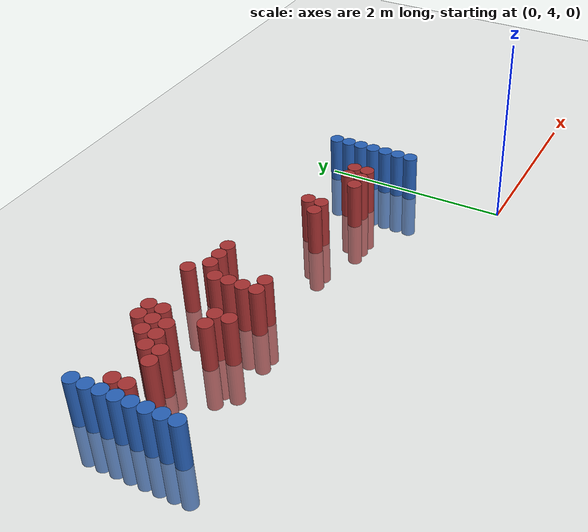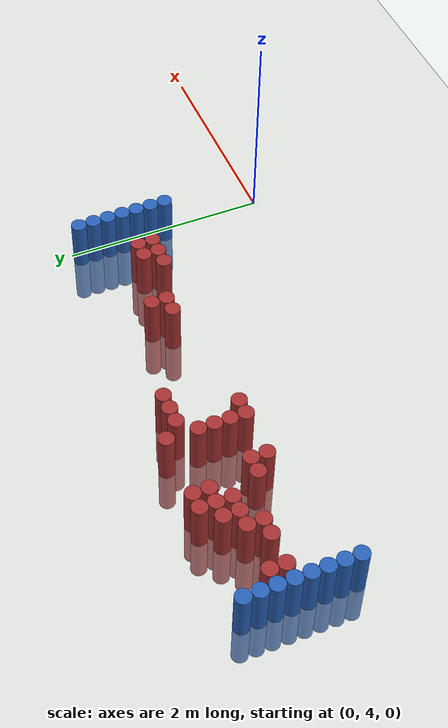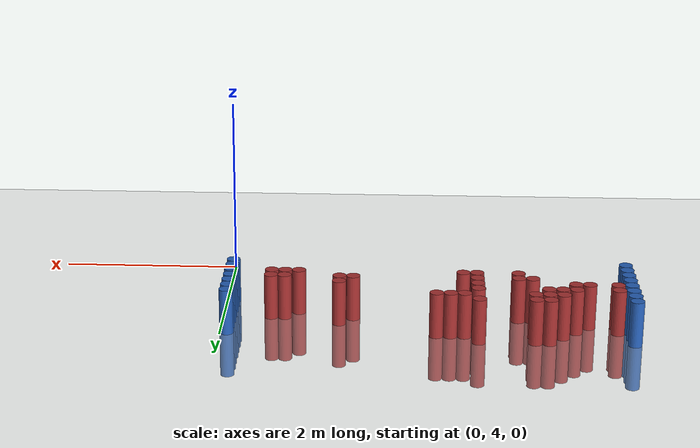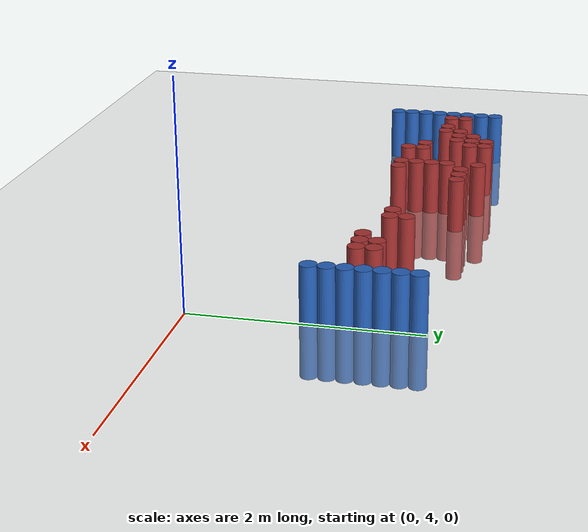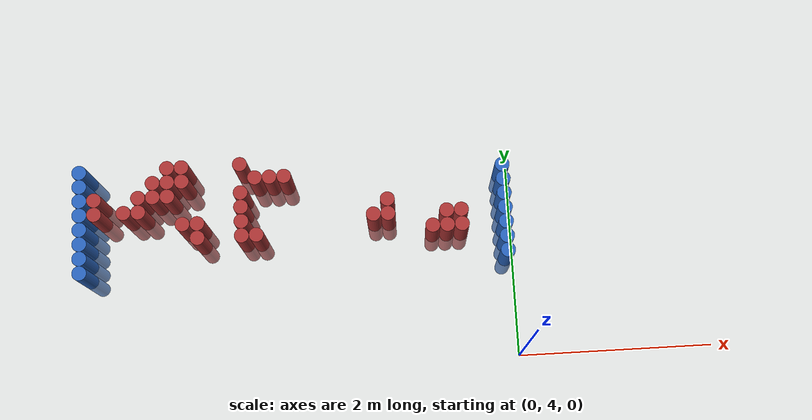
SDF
<sdf version="1.6">
 <world name="default">
  <model name="ground_plane">
   <static>1</static>
   <link name="link">
    <collision name="collision">
     <geometry><plane><normal>0 0 1</normal><size>100 100</size></plane></geometry>
     <surface><friction><ode><mu>100</mu><mu2>50</mu2></ode></friction></surface>
    </collision>
    <visual name="visual">
     <cast_shadows>0</cast_shadows>
     <geometry><plane><normal>0 0 1</normal><size>100 100</size></plane></geometry>
     <material>
      <script><uri>file://media/materials/scripts/gazebo.material</uri><name>Gazebo/Grey</name></script>
     </material>
    </visual>
   </link>
  </model>
  <model name="unit_cylinder_94">
   <static>1</static>
   <pose>-0.075000 5.025000 0.000000 0.000000 0.000000 0.000000</pose>
   <link name="link">
    <inertial>
     <mass>1</mass>
     <inertia><ixx>0.145833</ixx><ixy>0</ixy><ixz>0</ixz><iyy>0.145833</iyy><iyz>0</iyz><izz>0.125</izz></inertia>
    </inertial>
    <collision name="collision">
     <geometry><cylinder><radius>0.075000</radius><length>1</length></cylinder></geometry>
    </collision>
    <visual name="visual">
     <geometry><cylinder><radius>0.075000</radius><length>1</length></cylinder></geometry>
     <material>
      <ambient>0.152000 0.379000 0.720000 1</ambient>
      <diffuse>0.152000 0.379000 0.720000 1</diffuse>
     </material>
     <material>
      <script><name>Gazebo/Grey</name><uri>file://media/materials/scripts/gazebo.material</uri></script>
     </material>
    </visual>
   </link>
  </model>
  <model name="unit_cylinder_95">
   <static>1</static>
   <pose>-4.425000 5.025000 0.000000 0.000000 0.000000 0.000000</pose>
   <link name="link">
    <inertial>
     <mass>1</mass>
     <inertia><ixx>0.145833</ixx><ixy>0</ixy><ixz>0</ixz><iyy>0.145833</iyy><iyz>0</iyz><izz>0.125</izz></inertia>
    </inertial>
    <collision name="collision">
     <geometry><cylinder><radius>0.075000</radius><length>1</length></cylinder></geometry>
    </collision>
    <visual name="visual">
     <geometry><cylinder><radius>0.075000</radius><length>1</length></cylinder></geometry>
     <material>
      <ambient>0.152000 0.379000 0.720000 1</ambient>
      <diffuse>0.152000 0.379000 0.720000 1</diffuse>
     </material>
     <material>
      <script><name>Gazebo/Grey</name><uri>file://media/materials/scripts/gazebo.material</uri></script>
     </material>
    </visual>
   </link>
  </model>
  <model name="unit_cylinder_96">
   <static>1</static>
   <pose>-4.425000 5.175000 0.000000 0.000000 0.000000 0.000000</pose>
   <link name="link">
    <inertial>
     <mass>1</mass>
     <inertia><ixx>0.145833</ixx><ixy>0</ixy><ixz>0</ixz><iyy>0.145833</iyy><iyz>0</iyz><izz>0.125</izz></inertia>
    </inertial>
    <collision name="collision">
     <geometry><cylinder><radius>0.075000</radius><length>1</length></cylinder></geometry>
    </collision>
    <visual name="visual">
     <geometry><cylinder><radius>0.075000</radius><length>1</length></cylinder></geometry>
     <material>
      <ambient>0.152000 0.379000 0.720000 1</ambient>
      <diffuse>0.152000 0.379000 0.720000 1</diffuse>
     </material>
     <material>
      <script><name>Gazebo/Grey</name><uri>file://media/materials/scripts/gazebo.material</uri></script>
     </material>
    </visual>
   </link>
  </model>
  <model name="unit_cylinder_97">
   <static>1</static>
   <pose>-4.425000 5.325000 0.000000 0.000000 0.000000 0.000000</pose>
   <link name="link">
    <inertial>
     <mass>1</mass>
     <inertia><ixx>0.145833</ixx><ixy>0</ixy><ixz>0</ixz><iyy>0.145833</iyy><iyz>0</iyz><izz>0.125</izz></inertia>
    </inertial>
    <collision name="collision">
     <geometry><cylinder><radius>0.075000</radius><length>1</length></cylinder></geometry>
    </collision>
    <visual name="visual">
     <geometry><cylinder><radius>0.075000</radius><length>1</length></cylinder></geometry>
     <material>
      <ambient>0.152000 0.379000 0.720000 1</ambient>
      <diffuse>0.152000 0.379000 0.720000 1</diffuse>
     </material>
     <material>
      <script><name>Gazebo/Grey</name><uri>file://media/materials/scripts/gazebo.material</uri></script>
     </material>
    </visual>
   </link>
  </model>
  <model name="unit_cylinder_98">
   <static>1</static>
   <pose>-4.425000 5.475000 0.000000 0.000000 0.000000 0.000000</pose>
   <link name="link">
    <inertial>
     <mass>1</mass>
     <inertia><ixx>0.145833</ixx><ixy>0</ixy><ixz>0</ixz><iyy>0.145833</iyy><iyz>0</iyz><izz>0.125</izz></inertia>
    </inertial>
    <collision name="collision">
     <geometry><cylinder><radius>0.075000</radius><length>1</length></cylinder></geometry>
    </collision>
    <visual name="visual">
     <geometry><cylinder><radius>0.075000</radius><length>1</length></cylinder></geometry>
     <material>
      <ambient>0.152000 0.379000 0.720000 1</ambient>
      <diffuse>0.152000 0.379000 0.720000 1</diffuse>
     </material>
     <material>
      <script><name>Gazebo/Grey</name><uri>file://media/materials/scripts/gazebo.material</uri></script>
     </material>
    </visual>
   </link>
  </model>
  <model name="unit_cylinder_99">
   <static>1</static>
   <pose>-4.425000 5.625000 0.000000 0.000000 0.000000 0.000000</pose>
   <link name="link">
    <inertial>
     <mass>1</mass>
     <inertia><ixx>0.145833</ixx><ixy>0</ixy><ixz>0</ixz><iyy>0.145833</iyy><iyz>0</iyz><izz>0.125</izz></inertia>
    </inertial>
    <collision name="collision">
     <geometry><cylinder><radius>0.075000</radius><length>1</length></cylinder></geometry>
    </collision>
    <visual name="visual">
     <geometry><cylinder><radius>0.075000</radius><length>1</length></cylinder></geometry>
     <material>
      <ambient>0.152000 0.379000 0.720000 1</ambient>
      <diffuse>0.152000 0.379000 0.720000 1</diffuse>
     </material>
     <material>
      <script><name>Gazebo/Grey</name><uri>file://media/materials/scripts/gazebo.material</uri></script>
     </material>
    </visual>
   </link>
  </model>
  <model name="unit_cylinder_100">
   <static>1</static>
   <pose>-4.425000 5.775000 0.000000 0.000000 0.000000 0.000000</pose>
   <link name="link">
    <inertial>
     <mass>1</mass>
     <inertia><ixx>0.145833</ixx><ixy>0</ixy><ixz>0</ixz><iyy>0.145833</iyy><iyz>0</iyz><izz>0.125</izz></inertia>
    </inertial>
    <collision name="collision">
     <geometry><cylinder><radius>0.075000</radius><length>1</length></cylinder></geometry>
    </collision>
    <visual name="visual">
     <geometry><cylinder><radius>0.075000</radius><length>1</length></cylinder></geometry>
     <material>
      <ambient>0.152000 0.379000 0.720000 1</ambient>
      <diffuse>0.152000 0.379000 0.720000 1</diffuse>
     </material>
     <material>
      <script><name>Gazebo/Grey</name><uri>file://media/materials/scripts/gazebo.material</uri></script>
     </material>
    </visual>
   </link>
  </model>
  <model name="unit_cylinder_101">
   <static>1</static>
   <pose>-4.425000 5.925000 0.000000 0.000000 0.000000 0.000000</pose>
   <link name="link">
    <inertial>
     <mass>1</mass>
     <inertia><ixx>0.145833</ixx><ixy>0</ixy><ixz>0</ixz><iyy>0.145833</iyy><iyz>0</iyz><izz>0.125</izz></inertia>
    </inertial>
    <collision name="collision">
     <geometry><cylinder><radius>0.075000</radius><length>1</length></cylinder></geometry>
    </collision>
    <visual name="visual">
     <geometry><cylinder><radius>0.075000</radius><length>1</length></cylinder></geometry>
     <material>
      <ambient>0.152000 0.379000 0.720000 1</ambient>
      <diffuse>0.152000 0.379000 0.720000 1</diffuse>
     </material>
     <material>
      <script><name>Gazebo/Grey</name><uri>file://media/materials/scripts/gazebo.material</uri></script>
     </material>
    </visual>
   </link>
  </model>
  <model name="unit_cylinder_102">
   <static>1</static>
   <pose>-4.425000 6.075000 0.000000 0.000000 0.000000 0.000000</pose>
   <link name="link">
    <inertial>
     <mass>1</mass>
     <inertia><ixx>0.145833</ixx><ixy>0</ixy><ixz>0</ixz><iyy>0.145833</iyy><iyz>0</iyz><izz>0.125</izz></inertia>
    </inertial>
    <collision name="collision">
     <geometry><cylinder><radius>0.075000</radius><length>1</length></cylinder></geometry>
    </collision>
    <visual name="visual">
     <geometry><cylinder><radius>0.075000</radius><length>1</length></cylinder></geometry>
     <material>
      <ambient>0.152000 0.379000 0.720000 1</ambient>
      <diffuse>0.152000 0.379000 0.720000 1</diffuse>
     </material>
     <material>
      <script><name>Gazebo/Grey</name><uri>file://media/materials/scripts/gazebo.material</uri></script>
     </material>
    </visual>
   </link>
  </model>
  <model name="unit_cylinder_126">
   <static>1</static>
   <pose>-4.275000 5.625000 0.000000 0.000000 0.000000 0.000000</pose>
   <link name="link">
    <inertial>
     <mass>1</mass>
     <inertia><ixx>0.145833</ixx><ixy>0</ixy><ixz>0</ixz><iyy>0.145833</iyy><iyz>0</iyz><izz>0.125</izz></inertia>
    </inertial>
    <collision name="collision">
     <geometry><cylinder><radius>0.075000</radius><length>1</length></cylinder></geometry>
    </collision>
    <visual name="visual">
     <geometry><cylinder><radius>0.075000</radius><length>1</length></cylinder></geometry>
     <material>
      <ambient>0.648000 0.192000 0.192000 1</ambient>
      <diffuse>0.648000 0.192000 0.192000 1</diffuse>
     </material>
     <material>
      <script><name>Gazebo/Grey</name><uri>file://media/materials/scripts/gazebo.material</uri></script>
     </material>
    </visual>
   </link>
  </model>
  <model name="unit_cylinder_127">
   <static>1</static>
   <pose>-4.275000 5.775000 0.000000 0.000000 0.000000 0.000000</pose>
   <link name="link">
    <inertial>
     <mass>1</mass>
     <inertia><ixx>0.145833</ixx><ixy>0</ixy><ixz>0</ixz><iyy>0.145833</iyy><iyz>0</iyz><izz>0.125</izz></inertia>
    </inertial>
    <collision name="collision">
     <geometry><cylinder><radius>0.075000</radius><length>1</length></cylinder></geometry>
    </collision>
    <visual name="visual">
     <geometry><cylinder><radius>0.075000</radius><length>1</length></cylinder></geometry>
     <material>
      <ambient>0.648000 0.192000 0.192000 1</ambient>
      <diffuse>0.648000 0.192000 0.192000 1</diffuse>
     </material>
     <material>
      <script><name>Gazebo/Grey</name><uri>file://media/materials/scripts/gazebo.material</uri></script>
     </material>
    </visual>
   </link>
  </model>
  <model name="unit_cylinder_136">
   <static>1</static>
   <pose>-3.975000 5.625000 0.000000 0.000000 0.000000 0.000000</pose>
   <link name="link">
    <inertial>
     <mass>1</mass>
     <inertia><ixx>0.145833</ixx><ixy>0</ixy><ixz>0</ixz><iyy>0.145833</iyy><iyz>0</iyz><izz>0.125</izz></inertia>
    </inertial>
    <collision name="collision">
     <geometry><cylinder><radius>0.075000</radius><length>1</length></cylinder></geometry>
    </collision>
    <visual name="visual">
     <geometry><cylinder><radius>0.075000</radius><length>1</length></cylinder></geometry>
     <material>
      <ambient>0.648000 0.192000 0.192000 1</ambient>
      <diffuse>0.648000 0.192000 0.192000 1</diffuse>
     </material>
     <material>
      <script><name>Gazebo/Grey</name><uri>file://media/materials/scripts/gazebo.material</uri></script>
     </material>
    </visual>
   </link>
  </model>
  <model name="unit_cylinder_139">
   <static>1</static>
   <pose>-3.825000 5.625000 0.000000 0.000000 0.000000 0.000000</pose>
   <link name="link">
    <inertial>
     <mass>1</mass>
     <inertia><ixx>0.145833</ixx><ixy>0</ixy><ixz>0</ixz><iyy>0.145833</iyy><iyz>0</iyz><izz>0.125</izz></inertia>
    </inertial>
    <collision name="collision">
     <geometry><cylinder><radius>0.075000</radius><length>1</length></cylinder></geometry>
    </collision>
    <visual name="visual">
     <geometry><cylinder><radius>0.075000</radius><length>1</length></cylinder></geometry>
     <material>
      <ambient>0.648000 0.192000 0.192000 1</ambient>
      <diffuse>0.648000 0.192000 0.192000 1</diffuse>
     </material>
     <material>
      <script><name>Gazebo/Grey</name><uri>file://media/materials/scripts/gazebo.material</uri></script>
     </material>
    </visual>
   </link>
  </model>
  <model name="unit_cylinder_140">
   <static>1</static>
   <pose>-3.825000 5.775000 0.000000 0.000000 0.000000 0.000000</pose>
   <link name="link">
    <inertial>
     <mass>1</mass>
     <inertia><ixx>0.145833</ixx><ixy>0</ixy><ixz>0</ixz><iyy>0.145833</iyy><iyz>0</iyz><izz>0.125</izz></inertia>
    </inertial>
    <collision name="collision">
     <geometry><cylinder><radius>0.075000</radius><length>1</length></cylinder></geometry>
    </collision>
    <visual name="visual">
     <geometry><cylinder><radius>0.075000</radius><length>1</length></cylinder></geometry>
     <material>
      <ambient>0.648000 0.192000 0.192000 1</ambient>
      <diffuse>0.648000 0.192000 0.192000 1</diffuse>
     </material>
     <material>
      <script><name>Gazebo/Grey</name><uri>file://media/materials/scripts/gazebo.material</uri></script>
     </material>
    </visual>
   </link>
  </model>
  <model name="unit_cylinder_143">
   <static>1</static>
   <pose>-3.675000 5.775000 0.000000 0.000000 0.000000 0.000000</pose>
   <link name="link">
    <inertial>
     <mass>1</mass>
     <inertia><ixx>0.145833</ixx><ixy>0</ixy><ixz>0</ixz><iyy>0.145833</iyy><iyz>0</iyz><izz>0.125</izz></inertia>
    </inertial>
    <collision name="collision">
     <geometry><cylinder><radius>0.075000</radius><length>1</length></cylinder></geometry>
    </collision>
    <visual name="visual">
     <geometry><cylinder><radius>0.075000</radius><length>1</length></cylinder></geometry>
     <material>
      <ambient>0.648000 0.192000 0.192000 1</ambient>
      <diffuse>0.648000 0.192000 0.192000 1</diffuse>
     </material>
     <material>
      <script><name>Gazebo/Grey</name><uri>file://media/materials/scripts/gazebo.material</uri></script>
     </material>
    </visual>
   </link>
  </model>
  <model name="unit_cylinder_144">
   <static>1</static>
   <pose>-3.675000 5.925000 0.000000 0.000000 0.000000 0.000000</pose>
   <link name="link">
    <inertial>
     <mass>1</mass>
     <inertia><ixx>0.145833</ixx><ixy>0</ixy><ixz>0</ixz><iyy>0.145833</iyy><iyz>0</iyz><izz>0.125</izz></inertia>
    </inertial>
    <collision name="collision">
     <geometry><cylinder><radius>0.075000</radius><length>1</length></cylinder></geometry>
    </collision>
    <visual name="visual">
     <geometry><cylinder><radius>0.075000</radius><length>1</length></cylinder></geometry>
     <material>
      <ambient>0.648000 0.192000 0.192000 1</ambient>
      <diffuse>0.648000 0.192000 0.192000 1</diffuse>
     </material>
     <material>
      <script><name>Gazebo/Grey</name><uri>file://media/materials/scripts/gazebo.material</uri></script>
     </material>
    </visual>
   </link>
  </model>
  <model name="unit_cylinder_146">
   <static>1</static>
   <pose>-3.525000 5.775000 0.000000 0.000000 0.000000 0.000000</pose>
   <link name="link">
    <inertial>
     <mass>1</mass>
     <inertia><ixx>0.145833</ixx><ixy>0</ixy><ixz>0</ixz><iyy>0.145833</iyy><iyz>0</iyz><izz>0.125</izz></inertia>
    </inertial>
    <collision name="collision">
     <geometry><cylinder><radius>0.075000</radius><length>1</length></cylinder></geometry>
    </collision>
    <visual name="visual">
     <geometry><cylinder><radius>0.075000</radius><length>1</length></cylinder></geometry>
     <material>
      <ambient>0.648000 0.192000 0.192000 1</ambient>
      <diffuse>0.648000 0.192000 0.192000 1</diffuse>
     </material>
     <material>
      <script><name>Gazebo/Grey</name><uri>file://media/materials/scripts/gazebo.material</uri></script>
     </material>
    </visual>
   </link>
  </model>
  <model name="unit_cylinder_147">
   <static>1</static>
   <pose>-3.525000 5.925000 0.000000 0.000000 0.000000 0.000000</pose>
   <link name="link">
    <inertial>
     <mass>1</mass>
     <inertia><ixx>0.145833</ixx><ixy>0</ixy><ixz>0</ixz><iyy>0.145833</iyy><iyz>0</iyz><izz>0.125</izz></inertia>
    </inertial>
    <collision name="collision">
     <geometry><cylinder><radius>0.075000</radius><length>1</length></cylinder></geometry>
    </collision>
    <visual name="visual">
     <geometry><cylinder><radius>0.075000</radius><length>1</length></cylinder></geometry>
     <material>
      <ambient>0.648000 0.192000 0.192000 1</ambient>
      <diffuse>0.648000 0.192000 0.192000 1</diffuse>
     </material>
     <material>
      <script><name>Gazebo/Grey</name><uri>file://media/materials/scripts/gazebo.material</uri></script>
     </material>
    </visual>
   </link>
  </model>
  <model name="unit_cylinder_148">
   <static>1</static>
   <pose>-3.525000 6.075000 0.000000 0.000000 0.000000 0.000000</pose>
   <link name="link">
    <inertial>
     <mass>1</mass>
     <inertia><ixx>0.145833</ixx><ixy>0</ixy><ixz>0</ixz><iyy>0.145833</iyy><iyz>0</iyz><izz>0.125</izz></inertia>
    </inertial>
    <collision name="collision">
     <geometry><cylinder><radius>0.075000</radius><length>1</length></cylinder></geometry>
    </collision>
    <visual name="visual">
     <geometry><cylinder><radius>0.075000</radius><length>1</length></cylinder></geometry>
     <material>
      <ambient>0.648000 0.192000 0.192000 1</ambient>
      <diffuse>0.648000 0.192000 0.192000 1</diffuse>
     </material>
     <material>
      <script><name>Gazebo/Grey</name><uri>file://media/materials/scripts/gazebo.material</uri></script>
     </material>
    </visual>
   </link>
  </model>
  <model name="unit_cylinder_150">
   <static>1</static>
   <pose>-3.375000 5.475000 0.000000 0.000000 0.000000 0.000000</pose>
   <link name="link">
    <inertial>
     <mass>1</mass>
     <inertia><ixx>0.145833</ixx><ixy>0</ixy><ixz>0</ixz><iyy>0.145833</iyy><iyz>0</iyz><izz>0.125</izz></inertia>
    </inertial>
    <collision name="collision">
     <geometry><cylinder><radius>0.075000</radius><length>1</length></cylinder></geometry>
    </collision>
    <visual name="visual">
     <geometry><cylinder><radius>0.075000</radius><length>1</length></cylinder></geometry>
     <material>
      <ambient>0.648000 0.192000 0.192000 1</ambient>
      <diffuse>0.648000 0.192000 0.192000 1</diffuse>
     </material>
     <material>
      <script><name>Gazebo/Grey</name><uri>file://media/materials/scripts/gazebo.material</uri></script>
     </material>
    </visual>
   </link>
  </model>
  <model name="unit_cylinder_151">
   <static>1</static>
   <pose>-3.375000 5.925000 0.000000 0.000000 0.000000 0.000000</pose>
   <link name="link">
    <inertial>
     <mass>1</mass>
     <inertia><ixx>0.145833</ixx><ixy>0</ixy><ixz>0</ixz><iyy>0.145833</iyy><iyz>0</iyz><izz>0.125</izz></inertia>
    </inertial>
    <collision name="collision">
     <geometry><cylinder><radius>0.075000</radius><length>1</length></cylinder></geometry>
    </collision>
    <visual name="visual">
     <geometry><cylinder><radius>0.075000</radius><length>1</length></cylinder></geometry>
     <material>
      <ambient>0.648000 0.192000 0.192000 1</ambient>
      <diffuse>0.648000 0.192000 0.192000 1</diffuse>
     </material>
     <material>
      <script><name>Gazebo/Grey</name><uri>file://media/materials/scripts/gazebo.material</uri></script>
     </material>
    </visual>
   </link>
  </model>
  <model name="unit_cylinder_152">
   <static>1</static>
   <pose>-3.375000 6.075000 0.000000 0.000000 0.000000 0.000000</pose>
   <link name="link">
    <inertial>
     <mass>1</mass>
     <inertia><ixx>0.145833</ixx><ixy>0</ixy><ixz>0</ixz><iyy>0.145833</iyy><iyz>0</iyz><izz>0.125</izz></inertia>
    </inertial>
    <collision name="collision">
     <geometry><cylinder><radius>0.075000</radius><length>1</length></cylinder></geometry>
    </collision>
    <visual name="visual">
     <geometry><cylinder><radius>0.075000</radius><length>1</length></cylinder></geometry>
     <material>
      <ambient>0.648000 0.192000 0.192000 1</ambient>
      <diffuse>0.648000 0.192000 0.192000 1</diffuse>
     </material>
     <material>
      <script><name>Gazebo/Grey</name><uri>file://media/materials/scripts/gazebo.material</uri></script>
     </material>
    </visual>
   </link>
  </model>
  <model name="unit_cylinder_153">
   <static>1</static>
   <pose>-3.225000 5.325000 0.000000 0.000000 0.000000 0.000000</pose>
   <link name="link">
    <inertial>
     <mass>1</mass>
     <inertia><ixx>0.145833</ixx><ixy>0</ixy><ixz>0</ixz><iyy>0.145833</iyy><iyz>0</iyz><izz>0.125</izz></inertia>
    </inertial>
    <collision name="collision">
     <geometry><cylinder><radius>0.075000</radius><length>1</length></cylinder></geometry>
    </collision>
    <visual name="visual">
     <geometry><cylinder><radius>0.075000</radius><length>1</length></cylinder></geometry>
     <material>
      <ambient>0.648000 0.192000 0.192000 1</ambient>
      <diffuse>0.648000 0.192000 0.192000 1</diffuse>
     </material>
     <material>
      <script><name>Gazebo/Grey</name><uri>file://media/materials/scripts/gazebo.material</uri></script>
     </material>
    </visual>
   </link>
  </model>
  <model name="unit_cylinder_154">
   <static>1</static>
   <pose>-3.225000 5.475000 0.000000 0.000000 0.000000 0.000000</pose>
   <link name="link">
    <inertial>
     <mass>1</mass>
     <inertia><ixx>0.145833</ixx><ixy>0</ixy><ixz>0</ixz><iyy>0.145833</iyy><iyz>0</iyz><izz>0.125</izz></inertia>
    </inertial>
    <collision name="collision">
     <geometry><cylinder><radius>0.075000</radius><length>1</length></cylinder></geometry>
    </collision>
    <visual name="visual">
     <geometry><cylinder><radius>0.075000</radius><length>1</length></cylinder></geometry>
     <material>
      <ambient>0.648000 0.192000 0.192000 1</ambient>
      <diffuse>0.648000 0.192000 0.192000 1</diffuse>
     </material>
     <material>
      <script><name>Gazebo/Grey</name><uri>file://media/materials/scripts/gazebo.material</uri></script>
     </material>
    </visual>
   </link>
  </model>
  <model name="unit_cylinder_156">
   <static>1</static>
   <pose>-2.775000 5.325000 0.000000 0.000000 0.000000 0.000000</pose>
   <link name="link">
    <inertial>
     <mass>1</mass>
     <inertia><ixx>0.145833</ixx><ixy>0</ixy><ixz>0</ixz><iyy>0.145833</iyy><iyz>0</iyz><izz>0.125</izz></inertia>
    </inertial>
    <collision name="collision">
     <geometry><cylinder><radius>0.075000</radius><length>1</length></cylinder></geometry>
    </collision>
    <visual name="visual">
     <geometry><cylinder><radius>0.075000</radius><length>1</length></cylinder></geometry>
     <material>
      <ambient>0.648000 0.192000 0.192000 1</ambient>
      <diffuse>0.648000 0.192000 0.192000 1</diffuse>
     </material>
     <material>
      <script><name>Gazebo/Grey</name><uri>file://media/materials/scripts/gazebo.material</uri></script>
     </material>
    </visual>
   </link>
  </model>
  <model name="unit_cylinder_157">
   <static>1</static>
   <pose>-2.775000 5.475000 0.000000 0.000000 0.000000 0.000000</pose>
   <link name="link">
    <inertial>
     <mass>1</mass>
     <inertia><ixx>0.145833</ixx><ixy>0</ixy><ixz>0</ixz><iyy>0.145833</iyy><iyz>0</iyz><izz>0.125</izz></inertia>
    </inertial>
    <collision name="collision">
     <geometry><cylinder><radius>0.075000</radius><length>1</length></cylinder></geometry>
    </collision>
    <visual name="visual">
     <geometry><cylinder><radius>0.075000</radius><length>1</length></cylinder></geometry>
     <material>
      <ambient>0.648000 0.192000 0.192000 1</ambient>
      <diffuse>0.648000 0.192000 0.192000 1</diffuse>
     </material>
     <material>
      <script><name>Gazebo/Grey</name><uri>file://media/materials/scripts/gazebo.material</uri></script>
     </material>
    </visual>
   </link>
  </model>
  <model name="unit_cylinder_158">
   <static>1</static>
   <pose>-2.775000 5.625000 0.000000 0.000000 0.000000 0.000000</pose>
   <link name="link">
    <inertial>
     <mass>1</mass>
     <inertia><ixx>0.145833</ixx><ixy>0</ixy><ixz>0</ixz><iyy>0.145833</iyy><iyz>0</iyz><izz>0.125</izz></inertia>
    </inertial>
    <collision name="collision">
     <geometry><cylinder><radius>0.075000</radius><length>1</length></cylinder></geometry>
    </collision>
    <visual name="visual">
     <geometry><cylinder><radius>0.075000</radius><length>1</length></cylinder></geometry>
     <material>
      <ambient>0.648000 0.192000 0.192000 1</ambient>
      <diffuse>0.648000 0.192000 0.192000 1</diffuse>
     </material>
     <material>
      <script><name>Gazebo/Grey</name><uri>file://media/materials/scripts/gazebo.material</uri></script>
     </material>
    </visual>
   </link>
  </model>
  <model name="unit_cylinder_159">
   <static>1</static>
   <pose>-2.775000 5.775000 0.000000 0.000000 0.000000 0.000000</pose>
   <link name="link">
    <inertial>
     <mass>1</mass>
     <inertia><ixx>0.145833</ixx><ixy>0</ixy><ixz>0</ixz><iyy>0.145833</iyy><iyz>0</iyz><izz>0.125</izz></inertia>
    </inertial>
    <collision name="collision">
     <geometry><cylinder><radius>0.075000</radius><length>1</length></cylinder></geometry>
    </collision>
    <visual name="visual">
     <geometry><cylinder><radius>0.075000</radius><length>1</length></cylinder></geometry>
     <material>
      <ambient>0.648000 0.192000 0.192000 1</ambient>
      <diffuse>0.648000 0.192000 0.192000 1</diffuse>
     </material>
     <material>
      <script><name>Gazebo/Grey</name><uri>file://media/materials/scripts/gazebo.material</uri></script>
     </material>
    </visual>
   </link>
  </model>
  <model name="unit_cylinder_160">
   <static>1</static>
   <pose>-2.775000 6.075000 0.000000 0.000000 0.000000 0.000000</pose>
   <link name="link">
    <inertial>
     <mass>1</mass>
     <inertia><ixx>0.145833</ixx><ixy>0</ixy><ixz>0</ixz><iyy>0.145833</iyy><iyz>0</iyz><izz>0.125</izz></inertia>
    </inertial>
    <collision name="collision">
     <geometry><cylinder><radius>0.075000</radius><length>1</length></cylinder></geometry>
    </collision>
    <visual name="visual">
     <geometry><cylinder><radius>0.075000</radius><length>1</length></cylinder></geometry>
     <material>
      <ambient>0.648000 0.192000 0.192000 1</ambient>
      <diffuse>0.648000 0.192000 0.192000 1</diffuse>
     </material>
     <material>
      <script><name>Gazebo/Grey</name><uri>file://media/materials/scripts/gazebo.material</uri></script>
     </material>
    </visual>
   </link>
  </model>
  <model name="unit_cylinder_163">
   <static>1</static>
   <pose>-2.625000 5.325000 0.000000 0.000000 0.000000 0.000000</pose>
   <link name="link">
    <inertial>
     <mass>1</mass>
     <inertia><ixx>0.145833</ixx><ixy>0</ixy><ixz>0</ixz><iyy>0.145833</iyy><iyz>0</iyz><izz>0.125</izz></inertia>
    </inertial>
    <collision name="collision">
     <geometry><cylinder><radius>0.075000</radius><length>1</length></cylinder></geometry>
    </collision>
    <visual name="visual">
     <geometry><cylinder><radius>0.075000</radius><length>1</length></cylinder></geometry>
     <material>
      <ambient>0.648000 0.192000 0.192000 1</ambient>
      <diffuse>0.648000 0.192000 0.192000 1</diffuse>
     </material>
     <material>
      <script><name>Gazebo/Grey</name><uri>file://media/materials/scripts/gazebo.material</uri></script>
     </material>
    </visual>
   </link>
  </model>
  <model name="unit_cylinder_164">
   <static>1</static>
   <pose>-2.625000 5.925000 0.000000 0.000000 0.000000 0.000000</pose>
   <link name="link">
    <inertial>
     <mass>1</mass>
     <inertia><ixx>0.145833</ixx><ixy>0</ixy><ixz>0</ixz><iyy>0.145833</iyy><iyz>0</iyz><izz>0.125</izz></inertia>
    </inertial>
    <collision name="collision">
     <geometry><cylinder><radius>0.075000</radius><length>1</length></cylinder></geometry>
    </collision>
    <visual name="visual">
     <geometry><cylinder><radius>0.075000</radius><length>1</length></cylinder></geometry>
     <material>
      <ambient>0.648000 0.192000 0.192000 1</ambient>
      <diffuse>0.648000 0.192000 0.192000 1</diffuse>
     </material>
     <material>
      <script><name>Gazebo/Grey</name><uri>file://media/materials/scripts/gazebo.material</uri></script>
     </material>
    </visual>
   </link>
  </model>
  <model name="unit_cylinder_166">
   <static>1</static>
   <pose>-2.475000 5.925000 0.000000 0.000000 0.000000 0.000000</pose>
   <link name="link">
    <inertial>
     <mass>1</mass>
     <inertia><ixx>0.145833</ixx><ixy>0</ixy><ixz>0</ixz><iyy>0.145833</iyy><iyz>0</iyz><izz>0.125</izz></inertia>
    </inertial>
    <collision name="collision">
     <geometry><cylinder><radius>0.075000</radius><length>1</length></cylinder></geometry>
    </collision>
    <visual name="visual">
     <geometry><cylinder><radius>0.075000</radius><length>1</length></cylinder></geometry>
     <material>
      <ambient>0.648000 0.192000 0.192000 1</ambient>
      <diffuse>0.648000 0.192000 0.192000 1</diffuse>
     </material>
     <material>
      <script><name>Gazebo/Grey</name><uri>file://media/materials/scripts/gazebo.material</uri></script>
     </material>
    </visual>
   </link>
  </model>
  <model name="unit_cylinder_168">
   <static>1</static>
   <pose>-2.325000 5.925000 0.000000 0.000000 0.000000 0.000000</pose>
   <link name="link">
    <inertial>
     <mass>1</mass>
     <inertia><ixx>0.145833</ixx><ixy>0</ixy><ixz>0</ixz><iyy>0.145833</iyy><iyz>0</iyz><izz>0.125</izz></inertia>
    </inertial>
    <collision name="collision">
     <geometry><cylinder><radius>0.075000</radius><length>1</length></cylinder></geometry>
    </collision>
    <visual name="visual">
     <geometry><cylinder><radius>0.075000</radius><length>1</length></cylinder></geometry>
     <material>
      <ambient>0.648000 0.192000 0.192000 1</ambient>
      <diffuse>0.648000 0.192000 0.192000 1</diffuse>
     </material>
     <material>
      <script><name>Gazebo/Grey</name><uri>file://media/materials/scripts/gazebo.material</uri></script>
     </material>
    </visual>
   </link>
  </model>
  <model name="unit_cylinder_177">
   <static>1</static>
   <pose>-1.425000 5.475000 0.000000 0.000000 0.000000 0.000000</pose>
   <link name="link">
    <inertial>
     <mass>1</mass>
     <inertia><ixx>0.145833</ixx><ixy>0</ixy><ixz>0</ixz><iyy>0.145833</iyy><iyz>0</iyz><izz>0.125</izz></inertia>
    </inertial>
    <collision name="collision">
     <geometry><cylinder><radius>0.075000</radius><length>1</length></cylinder></geometry>
    </collision>
    <visual name="visual">
     <geometry><cylinder><radius>0.075000</radius><length>1</length></cylinder></geometry>
     <material>
      <ambient>0.648000 0.192000 0.192000 1</ambient>
      <diffuse>0.648000 0.192000 0.192000 1</diffuse>
     </material>
     <material>
      <script><name>Gazebo/Grey</name><uri>file://media/materials/scripts/gazebo.material</uri></script>
     </material>
    </visual>
   </link>
  </model>
  <model name="unit_cylinder_178">
   <static>1</static>
   <pose>-1.275000 5.475000 0.000000 0.000000 0.000000 0.000000</pose>
   <link name="link">
    <inertial>
     <mass>1</mass>
     <inertia><ixx>0.145833</ixx><ixy>0</ixy><ixz>0</ixz><iyy>0.145833</iyy><iyz>0</iyz><izz>0.125</izz></inertia>
    </inertial>
    <collision name="collision">
     <geometry><cylinder><radius>0.075000</radius><length>1</length></cylinder></geometry>
    </collision>
    <visual name="visual">
     <geometry><cylinder><radius>0.075000</radius><length>1</length></cylinder></geometry>
     <material>
      <ambient>0.648000 0.192000 0.192000 1</ambient>
      <diffuse>0.648000 0.192000 0.192000 1</diffuse>
     </material>
     <material>
      <script><name>Gazebo/Grey</name><uri>file://media/materials/scripts/gazebo.material</uri></script>
     </material>
    </visual>
   </link>
  </model>
  <model name="unit_cylinder_179">
   <static>1</static>
   <pose>-1.275000 5.625000 0.000000 0.000000 0.000000 0.000000</pose>
   <link name="link">
    <inertial>
     <mass>1</mass>
     <inertia><ixx>0.145833</ixx><ixy>0</ixy><ixz>0</ixz><iyy>0.145833</iyy><iyz>0</iyz><izz>0.125</izz></inertia>
    </inertial>
    <collision name="collision">
     <geometry><cylinder><radius>0.075000</radius><length>1</length></cylinder></geometry>
    </collision>
    <visual name="visual">
     <geometry><cylinder><radius>0.075000</radius><length>1</length></cylinder></geometry>
     <material>
      <ambient>0.648000 0.192000 0.192000 1</ambient>
      <diffuse>0.648000 0.192000 0.192000 1</diffuse>
     </material>
     <material>
      <script><name>Gazebo/Grey</name><uri>file://media/materials/scripts/gazebo.material</uri></script>
     </material>
    </visual>
   </link>
  </model>
  <model name="unit_cylinder_183">
   <static>1</static>
   <pose>-0.825000 5.325000 0.000000 0.000000 0.000000 0.000000</pose>
   <link name="link">
    <inertial>
     <mass>1</mass>
     <inertia><ixx>0.145833</ixx><ixy>0</ixy><ixz>0</ixz><iyy>0.145833</iyy><iyz>0</iyz><izz>0.125</izz></inertia>
    </inertial>
    <collision name="collision">
     <geometry><cylinder><radius>0.075000</radius><length>1</length></cylinder></geometry>
    </collision>
    <visual name="visual">
     <geometry><cylinder><radius>0.075000</radius><length>1</length></cylinder></geometry>
     <material>
      <ambient>0.648000 0.192000 0.192000 1</ambient>
      <diffuse>0.648000 0.192000 0.192000 1</diffuse>
     </material>
     <material>
      <script><name>Gazebo/Grey</name><uri>file://media/materials/scripts/gazebo.material</uri></script>
     </material>
    </visual>
   </link>
  </model>
  <model name="unit_cylinder_184">
   <static>1</static>
   <pose>-0.675000 5.325000 0.000000 0.000000 0.000000 0.000000</pose>
   <link name="link">
    <inertial>
     <mass>1</mass>
     <inertia><ixx>0.145833</ixx><ixy>0</ixy><ixz>0</ixz><iyy>0.145833</iyy><iyz>0</iyz><izz>0.125</izz></inertia>
    </inertial>
    <collision name="collision">
     <geometry><cylinder><radius>0.075000</radius><length>1</length></cylinder></geometry>
    </collision>
    <visual name="visual">
     <geometry><cylinder><radius>0.075000</radius><length>1</length></cylinder></geometry>
     <material>
      <ambient>0.648000 0.192000 0.192000 1</ambient>
      <diffuse>0.648000 0.192000 0.192000 1</diffuse>
     </material>
     <material>
      <script><name>Gazebo/Grey</name><uri>file://media/materials/scripts/gazebo.material</uri></script>
     </material>
    </visual>
   </link>
  </model>
  <model name="unit_cylinder_185">
   <static>1</static>
   <pose>-0.675000 5.475000 0.000000 0.000000 0.000000 0.000000</pose>
   <link name="link">
    <inertial>
     <mass>1</mass>
     <inertia><ixx>0.145833</ixx><ixy>0</ixy><ixz>0</ixz><iyy>0.145833</iyy><iyz>0</iyz><izz>0.125</izz></inertia>
    </inertial>
    <collision name="collision">
     <geometry><cylinder><radius>0.075000</radius><length>1</length></cylinder></geometry>
    </collision>
    <visual name="visual">
     <geometry><cylinder><radius>0.075000</radius><length>1</length></cylinder></geometry>
     <material>
      <ambient>0.648000 0.192000 0.192000 1</ambient>
      <diffuse>0.648000 0.192000 0.192000 1</diffuse>
     </material>
     <material>
      <script><name>Gazebo/Grey</name><uri>file://media/materials/scripts/gazebo.material</uri></script>
     </material>
    </visual>
   </link>
  </model>
  <model name="unit_cylinder_189">
   <static>1</static>
   <pose>-0.525000 5.325000 0.000000 0.000000 0.000000 0.000000</pose>
   <link name="link">
    <inertial>
     <mass>1</mass>
     <inertia><ixx>0.145833</ixx><ixy>0</ixy><ixz>0</ixz><iyy>0.145833</iyy><iyz>0</iyz><izz>0.125</izz></inertia>
    </inertial>
    <collision name="collision">
     <geometry><cylinder><radius>0.075000</radius><length>1</length></cylinder></geometry>
    </collision>
    <visual name="visual">
     <geometry><cylinder><radius>0.075000</radius><length>1</length></cylinder></geometry>
     <material>
      <ambient>0.648000 0.192000 0.192000 1</ambient>
      <diffuse>0.648000 0.192000 0.192000 1</diffuse>
     </material>
     <material>
      <script><name>Gazebo/Grey</name><uri>file://media/materials/scripts/gazebo.material</uri></script>
     </material>
    </visual>
   </link>
  </model>
  <model name="unit_cylinder_190">
   <static>1</static>
   <pose>-0.525000 5.475000 0.000000 0.000000 0.000000 0.000000</pose>
   <link name="link">
    <inertial>
     <mass>1</mass>
     <inertia><ixx>0.145833</ixx><ixy>0</ixy><ixz>0</ixz><iyy>0.145833</iyy><iyz>0</iyz><izz>0.125</izz></inertia>
    </inertial>
    <collision name="collision">
     <geometry><cylinder><radius>0.075000</radius><length>1</length></cylinder></geometry>
    </collision>
    <visual name="visual">
     <geometry><cylinder><radius>0.075000</radius><length>1</length></cylinder></geometry>
     <material>
      <ambient>0.648000 0.192000 0.192000 1</ambient>
      <diffuse>0.648000 0.192000 0.192000 1</diffuse>
     </material>
     <material>
      <script><name>Gazebo/Grey</name><uri>file://media/materials/scripts/gazebo.material</uri></script>
     </material>
    </visual>
   </link>
  </model>
  <model name="unit_cylinder_205">
   <static>1</static>
   <pose>-0.075000 5.175000 0.000000 0.000000 0.000000 0.000000</pose>
   <link name="link">
    <inertial>
     <mass>1</mass>
     <inertia><ixx>0.145833</ixx><ixy>0</ixy><ixz>0</ixz><iyy>0.145833</iyy><iyz>0</iyz><izz>0.125</izz></inertia>
    </inertial>
    <collision name="collision">
     <geometry><cylinder><radius>0.075000</radius><length>1</length></cylinder></geometry>
    </collision>
    <visual name="visual">
     <geometry><cylinder><radius>0.075000</radius><length>1</length></cylinder></geometry>
     <material>
      <ambient>0.152000 0.379000 0.720000 1</ambient>
      <diffuse>0.152000 0.379000 0.720000 1</diffuse>
     </material>
     <material>
      <script><name>Gazebo/Grey</name><uri>file://media/materials/scripts/gazebo.material</uri></script>
     </material>
    </visual>
   </link>
  </model>
  <model name="unit_cylinder_206">
   <static>1</static>
   <pose>-0.075000 5.325000 0.000000 0.000000 0.000000 0.000000</pose>
   <link name="link">
    <inertial>
     <mass>1</mass>
     <inertia><ixx>0.145833</ixx><ixy>0</ixy><ixz>0</ixz><iyy>0.145833</iyy><iyz>0</iyz><izz>0.125</izz></inertia>
    </inertial>
    <collision name="collision">
     <geometry><cylinder><radius>0.075000</radius><length>1</length></cylinder></geometry>
    </collision>
    <visual name="visual">
     <geometry><cylinder><radius>0.075000</radius><length>1</length></cylinder></geometry>
     <material>
      <ambient>0.152000 0.379000 0.720000 1</ambient>
      <diffuse>0.152000 0.379000 0.720000 1</diffuse>
     </material>
     <material>
      <script><name>Gazebo/Grey</name><uri>file://media/materials/scripts/gazebo.material</uri></script>
     </material>
    </visual>
   </link>
  </model>
  <model name="unit_cylinder_207">
   <static>1</static>
   <pose>-0.075000 5.475000 0.000000 0.000000 0.000000 0.000000</pose>
   <link name="link">
    <inertial>
     <mass>1</mass>
     <inertia><ixx>0.145833</ixx><ixy>0</ixy><ixz>0</ixz><iyy>0.145833</iyy><iyz>0</iyz><izz>0.125</izz></inertia>
    </inertial>
    <collision name="collision">
     <geometry><cylinder><radius>0.075000</radius><length>1</length></cylinder></geometry>
    </collision>
    <visual name="visual">
     <geometry><cylinder><radius>0.075000</radius><length>1</length></cylinder></geometry>
     <material>
      <ambient>0.152000 0.379000 0.720000 1</ambient>
      <diffuse>0.152000 0.379000 0.720000 1</diffuse>
     </material>
     <material>
      <script><name>Gazebo/Grey</name><uri>file://media/materials/scripts/gazebo.material</uri></script>
     </material>
    </visual>
   </link>
  </model>
  <model name="unit_cylinder_208">
   <static>1</static>
   <pose>-0.075000 5.625000 0.000000 0.000000 0.000000 0.000000</pose>
   <link name="link">
    <inertial>
     <mass>1</mass>
     <inertia><ixx>0.145833</ixx><ixy>0</ixy><ixz>0</ixz><iyy>0.145833</iyy><iyz>0</iyz><izz>0.125</izz></inertia>
    </inertial>
    <collision name="collision">
     <geometry><cylinder><radius>0.075000</radius><length>1</length></cylinder></geometry>
    </collision>
    <visual name="visual">
     <geometry><cylinder><radius>0.075000</radius><length>1</length></cylinder></geometry>
     <material>
      <ambient>0.152000 0.379000 0.720000 1</ambient>
      <diffuse>0.152000 0.379000 0.720000 1</diffuse>
     </material>
     <material>
      <script><name>Gazebo/Grey</name><uri>file://media/materials/scripts/gazebo.material</uri></script>
     </material>
    </visual>
   </link>
  </model>
  <model name="unit_cylinder_209">
   <static>1</static>
   <pose>-0.075000 5.775000 0.000000 0.000000 0.000000 0.000000</pose>
   <link name="link">
    <inertial>
     <mass>1</mass>
     <inertia><ixx>0.145833</ixx><ixy>0</ixy><ixz>0</ixz><iyy>0.145833</iyy><iyz>0</iyz><izz>0.125</izz></inertia>
    </inertial>
    <collision name="collision">
     <geometry><cylinder><radius>0.075000</radius><length>1</length></cylinder></geometry>
    </collision>
    <visual name="visual">
     <geometry><cylinder><radius>0.075000</radius><length>1</length></cylinder></geometry>
     <material>
      <ambient>0.152000 0.379000 0.720000 1</ambient>
      <diffuse>0.152000 0.379000 0.720000 1</diffuse>
     </material>
     <material>
      <script><name>Gazebo/Grey</name><uri>file://media/materials/scripts/gazebo.material</uri></script>
     </material>
    </visual>
   </link>
  </model>
  <model name="unit_cylinder_210">
   <static>1</static>
   <pose>-0.075000 5.925000 0.000000 0.000000 0.000000 0.000000</pose>
   <link name="link">
    <inertial>
     <mass>1</mass>
     <inertia><ixx>0.145833</ixx><ixy>0</ixy><ixz>0</ixz><iyy>0.145833</iyy><iyz>0</iyz><izz>0.125</izz></inertia>
    </inertial>
    <collision name="collision">
     <geometry><cylinder><radius>0.075000</radius><length>1</length></cylinder></geometry>
    </collision>
    <visual name="visual">
     <geometry><cylinder><radius>0.075000</radius><length>1</length></cylinder></geometry>
     <material>
      <ambient>0.152000 0.379000 0.720000 1</ambient>
      <diffuse>0.152000 0.379000 0.720000 1</diffuse>
     </material>
     <material>
      <script><name>Gazebo/Grey</name><uri>file://media/materials/scripts/gazebo.material</uri></script>
     </material>
    </visual>
   </link>
  </model>
 </world>
</sdf>
